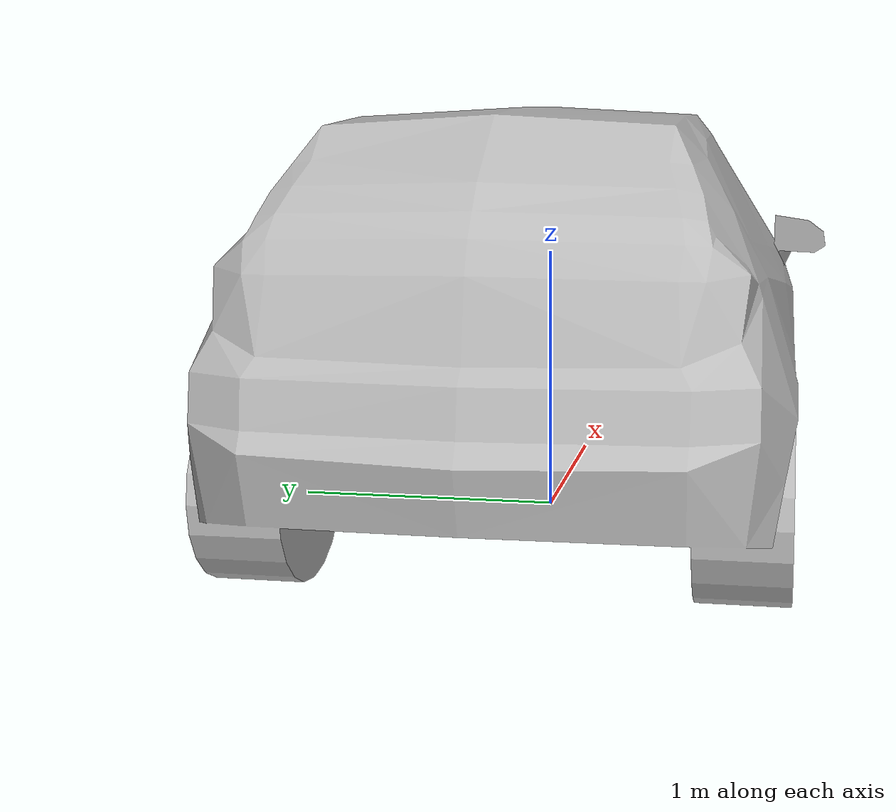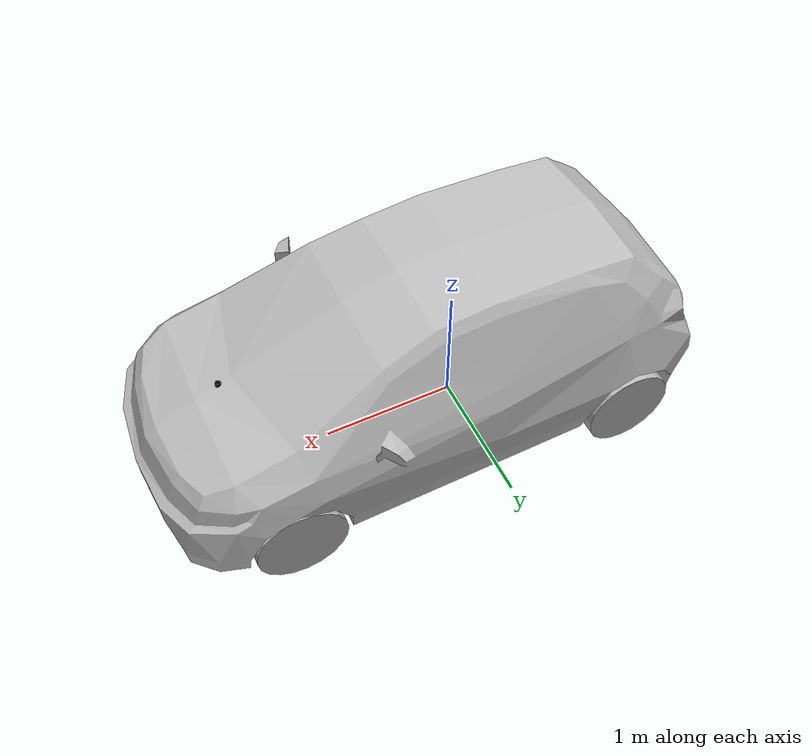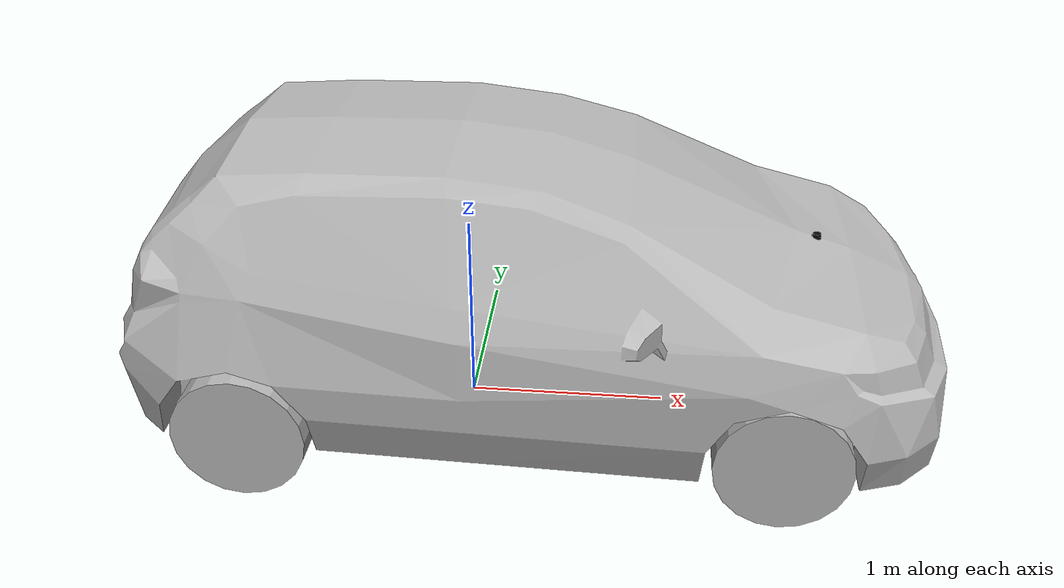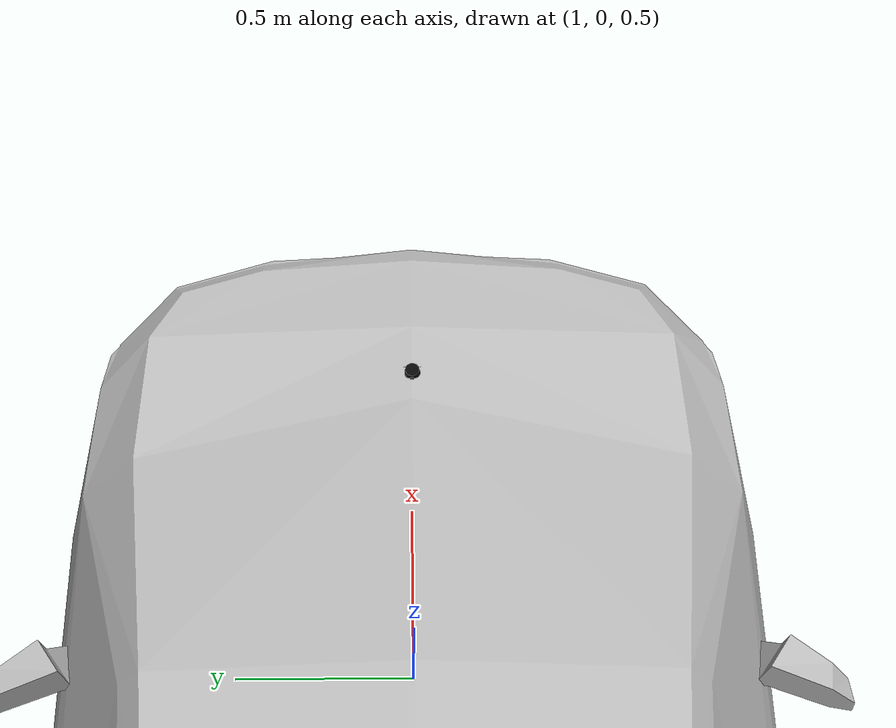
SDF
<?xml version="1.0" ?>
<sdf version="1.6">
  <model name="hatchback">
    <static>true</static>
    <link name="link">
      <collision name="collision">
        <pose>0 0 0 0 0 1.57079632679</pose>
        <geometry>
          <mesh>
            <scale>0.0254 0.0254 0.0254</scale>
            <uri>model://hatchback/meshes/hatchback.obj</uri>
          </mesh>
        </geometry>
      </collision>
      <visual name="visual">
        <pose>0 0 0 0 0 1.57079632679</pose>
        <geometry>
          <mesh>
            <scale>0.0254 0.0254 0.0254</scale>
            <uri>model://hatchback/meshes/hatchback.obj</uri>
          </mesh>
        </geometry>
      </visual>
    </link>

    <!--add lidar-->
    <link name="LiDAR_link">
      <gravity>0</gravity>
        <pose>1.7 0 1 0 0 0</pose>
        <visual name="visual">
          <pose>0 0 0 0 0 0</pose>
          <geometry>
            <mesh>
              <uri>model://hokuyo/meshes/hokuyo.dae</uri>
            </mesh>
          </geometry>
        </visual>
        <inertial>
          <mass>0.016</mass>
          <inertia>
            <ixx>0.0001</ixx>
            <ixy>0</ixy>
            <ixz>0</ixz>
            <iyy>0.0001</iyy>
            <iyz>0</iyz>
            <izz>0.0001</izz>
            <!-- low intertia necessary to avoid not disturb the drone -->
          </inertia>
        </inertial>

        <sensor name="camera" type="camera">
          <pose>0 0 0 0 0 0</pose>
          <camera>
            <horizontal_fov>1.5708</horizontal_fov>
            <image>
              <width>512</width>
              <height>200</height>
            </image>
            <clip>
              <near>0.05</near>
              <far>200</far>
            </clip>
          </camera>
          <always_on>1</always_on>
          <update_rate>1</update_rate>
          <visualize>false</visualize>
          <plugin name="camera_controller" filename="libgazebo_ros_camera.so">
            <alwaysOn>true</alwaysOn>
            <updateRate>0.0</updateRate>
            <cameraName>webcam</cameraName>
            <imageTopicName>LiDAR_image_raw</imageTopicName>
            <cameraInfoTopicName>camera_info</cameraInfoTopicName>
            <frameName>/LiDAR_link</frameName>
            <hackBaseline>0.07</hackBaseline>
            <distortionK1>0.0</distortionK1>
            <distortionK2>0.0</distortionK2>
            <distortionK3>0.0</distortionK3>
            <distortionT1>0.0</distortionT1>
            <distortionT2>0.0</distortionT2>
          </plugin>

        </sensor>

        <sensor type="ray" name="LiDAR_sensor">
          <pose>0 0 0 0 0 0</pose>
          <visualize>false</visualize>
          <update_rate>1</update_rate>
          <ray>
            <scan>
              <horizontal>
                <samples>512</samples>
                <resolution>1</resolution>
                <min_angle>-0.785398</min_angle>
                <max_angle>0.785398</max_angle>
              </horizontal>
              <vertical>
                <samples>64</samples>
                <resolution>1</resolution>
                <min_angle>-0.2356194</min_angle>
                <max_angle>0.2356194</max_angle>
              </vertical>
            </scan>
            <range>
              <min>0.4</min>
              <max>50</max>
              <resolution>0.1</resolution>
            </range>
            <noise>
                <type>gaussian</type>
                <mean>0.0</mean>
                <stddev>0.1</stddev>
            </noise>
          </ray>
          <plugin name="LiDAR_node" filename="libreal2sim_lidar_sensor.so">
            <robotNamespace></robotNamespace>
            <topicName>/LiDAR/scan</topicName>
            <frameName>/LiDAR_link</frameName>
            <sensorId>1</sensorId>
            <gndThreshold>0.11</gndThreshold>
            <gndSegMorphological>1</gndSegMorphological>
            <numOfClasses>4</numOfClasses>
            <maxSensorTrainingRange>80</maxSensorTrainingRange>
            <DnnPath>/home/khalid/catkin_ws/src/Real2Sim_gazebo/real2sim_lidar_sensor/network/frozen_graph_Unet.pb</DnnPath>
            <pose>1.7 0 1 0 0 0</pose>
            <cam_fov>1.59</cam_fov>
            <cam_topic_name>/webcam/LiDAR_image_raw</cam_topic_name>
          </plugin>
        </sensor>
      </link>

      <joint name="LiDAR_joint" type="fixed">
      <gravity>0</gravity>
        <pose>0 0 0 0 0 0</pose>
        <parent>link</parent>
        <child>LiDAR_link</child>
      </joint>

  </model>
</sdf>
